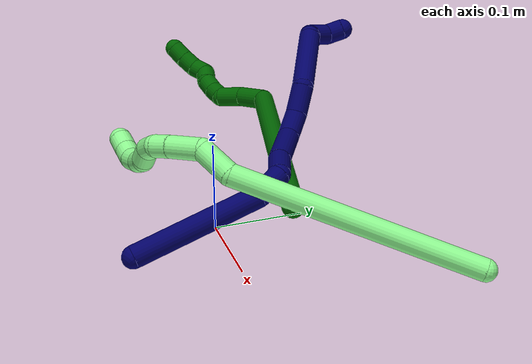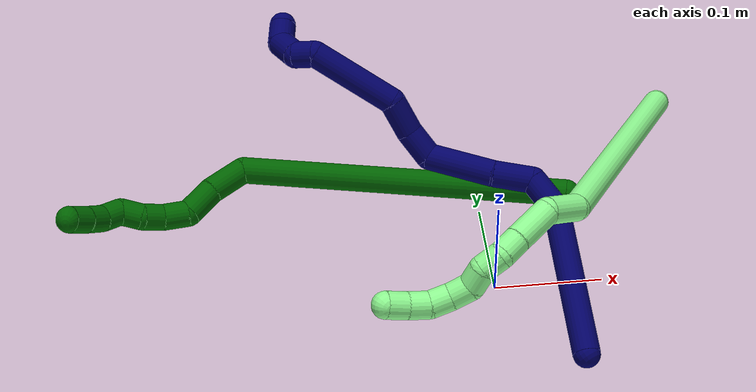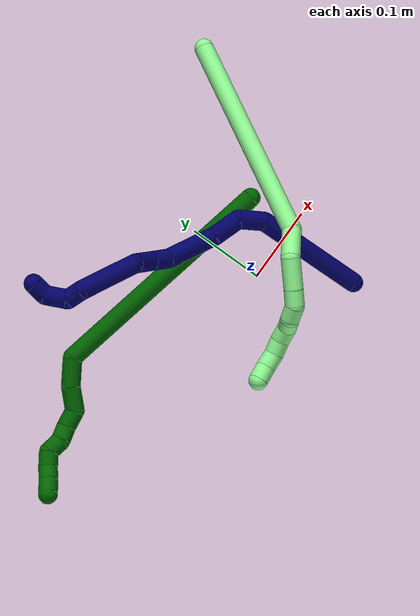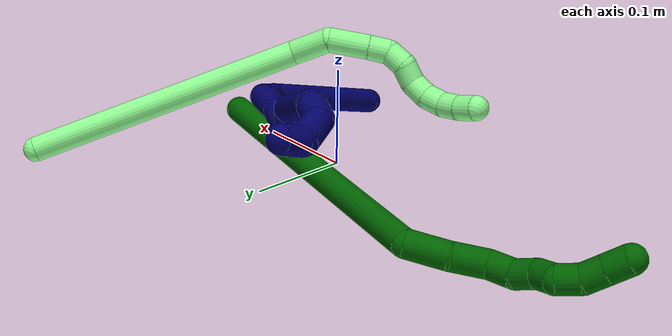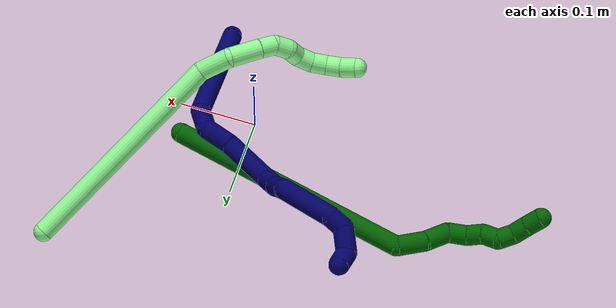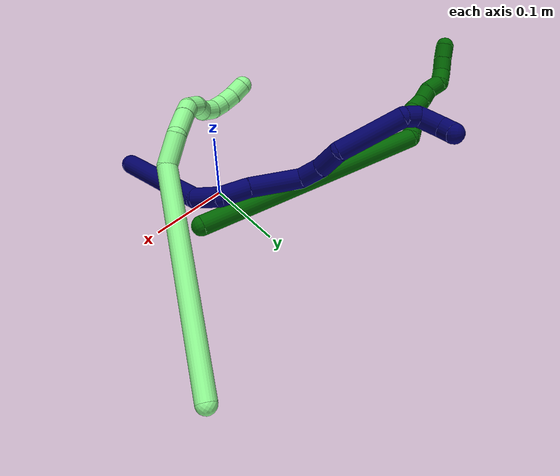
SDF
<sdf version="1.7">
 <world name="default">
  <model name="photoneo_s_sensor">
   <static>1</static>
   <pose>0 0 2 1.57079 1.57079 3.14159</pose>
   <link name="link">
    <inertial><mass>0.1</mass></inertial>
    <sensor name="sensor" type="depth">
     <update_rate>30</update_rate>
     <camera>
      <horizontal_fov>1.22</horizontal_fov>
      <image><width>1920</width><height>1200</height><format>B8G8R8</format></image>
      <clip><near>0.1</near><far>4</far></clip>
      <depth_camera><output>points</output></depth_camera>
     </camera>
     <plugin name="camera_plugin" filename="libgazebo_ros_depth_camera.so">
      <baseline>0.2</baseline>
      <alwaysOn>1</alwaysOn>
      <updateRate>0.0</updateRate>
      <cameraName>camera_ir</cameraName>
      <imageTopicName>/camera/color/image_raw</imageTopicName>
      <cameraInfoTopicName>/camera/color/camera_info</cameraInfoTopicName>
      <depthImageTopicName>/camera/depth/image_raw</depthImageTopicName>
      <depthImageCameraInfoTopicName>/camera/depth/camera_info</depthImageCameraInfoTopicName>
      <pointCloudTopicName>/camera/depth/points</pointCloudTopicName>
      <frameName>fr_optical</frameName>
      <pointCloudCutoff>0.1</pointCloudCutoff>
      <pointCloudCutoffMax>2.0</pointCloudCutoffMax>
      <distortionK1>0</distortionK1>
      <distortionK2>0</distortionK2>
      <distortionK3>0</distortionK3>
      <distortionT1>0</distortionT1>
      <distortionT2>0</distortionT2>
      <CxPrime>0</CxPrime>
      <Cx>0</Cx>
      <Cy>0</Cy>
      <focalLength>0</focalLength>
      <hackBaseline>0</hackBaseline>
     </plugin>
    </sensor>
   </link>
  </model>
  <model name="bin">
   <static>1</static>
   <link name="bottom">
    <collision name="collision-bottom">
     <pose>0 0 -0.01 0 -0 0</pose>
     <geometry><box><size>0.8 0.6 0.02</size></box></geometry>
     <surface>
      <friction><ode><mu>100</mu><mu2>100</mu2></ode></friction>
      <contact><collide_bitmask>65535</collide_bitmask></contact>
     </surface>
    </collision>
   </link>
   <link name="west_wall">
    <collision name="collision-west_wall">
     <pose>-0.41 0 0.1 0 -0 0</pose>
     <geometry><box><size>0.02 0.6 0.2</size></box></geometry>
     <surface>
      <friction><ode><mu>100</mu><mu2>100</mu2></ode></friction>
      <contact><collide_bitmask>65535</collide_bitmask></contact>
     </surface>
    </collision>
   </link>
   <link name="east_wall">
    <collision name="collision-east_wall">
     <pose>0.41 0 0.1 0 -0 0</pose>
     <geometry><box><size>0.02 0.6 0.2</size></box></geometry>
     <surface>
      <friction><ode><mu>100</mu><mu2>100</mu2></ode></friction>
      <contact><collide_bitmask>65535</collide_bitmask></contact>
     </surface>
    </collision>
   </link>
   <link name="south_wall">
    <collision name="collision-south_wall">
     <pose>0 -0.31 0.1 0 -0 0</pose>
     <geometry><box><size>0.8 0.02 0.2</size></box></geometry>
     <surface>
      <friction><ode><mu>100</mu><mu2>100</mu2></ode></friction>
      <contact><collide_bitmask>65535</collide_bitmask></contact>
     </surface>
    </collision>
   </link>
   <link name="north_wall">
    <collision name="collision-north_wall">
     <pose>0 0.31 0.1 0 -0 0</pose>
     <geometry><box><size>0.8 0.02 0.2</size></box></geometry>
     <surface>
      <friction><ode><mu>100</mu><mu2>100</mu2></ode></friction>
      <contact><collide_bitmask>65535</collide_bitmask></contact>
     </surface>
    </collision>
   </link>
  </model>
  <model name="6">
   <static>0</static>
   <link name="6">
    <collision name="collision-cylinder-e_1_1_4">
     <pose>-0.106841 0.109426 0.003591 -1.53799 -0.773176 0.750529</pose>
     <geometry><cylinder><radius>0.0125</radius><length>0.305953</length></cylinder></geometry>
     <surface>
      <friction><ode><mu>1.16</mu><mu2>1.16</mu2><slip1>0</slip1><slip2>0</slip2></ode></friction>
      <contact><ode><kp>1e+06</kp><kd>1</kd><max_vel>0</max_vel><min_depth>0.001</min_depth></ode></contact>
     </surface>
    </collision>
    <visual name="visual-cylinder-e_1_1_4">
     <pose>-0.106841 0.109426 0.003591 -1.53799 -0.773176 0.750529</pose>
     <geometry><cylinder><radius>0.0125</radius><length>0.305953</length></cylinder></geometry>
     <material><ambient>0 0.392157 0.003922 1</ambient></material>
    </visual>
    <collision name="collision-cylinder-e_2_4_5">
     <pose>-0.228338 0.222636 0.017983 -0.336965 -0.907863 0.165604</pose>
     <geometry><cylinder><radius>0.0125</radius><length>0.037192</length></cylinder></geometry>
     <surface>
      <friction><ode><mu>1.16</mu><mu2>1.16</mu2><slip1>0</slip1><slip2>0</slip2></ode></friction>
      <contact><ode><kp>1e+06</kp><kd>1</kd><max_vel>0</max_vel><min_depth>0.001</min_depth></ode></contact>
     </surface>
    </collision>
    <visual name="visual-cylinder-e_2_4_5">
     <pose>-0.228338 0.222636 0.017983 -0.336965 -0.907863 0.165604</pose>
     <geometry><cylinder><radius>0.0125</radius><length>0.037192</length></cylinder></geometry>
     <material><ambient>0 0.392157 0.003922 1</ambient></material>
    </visual>
    <collision name="collision-cylinder-e_3_5_6">
     <pose>-0.254658 0.226493 0.03968 -0.006779 -0.819318 0.002944</pose>
     <geometry><cylinder><radius>0.0125</radius><length>0.031921</length></cylinder></geometry>
     <surface>
      <friction><ode><mu>1.16</mu><mu2>1.16</mu2><slip1>0</slip1><slip2>0</slip2></ode></friction>
      <contact><ode><kp>1e+06</kp><kd>1</kd><max_vel>0</max_vel><min_depth>0.001</min_depth></ode></contact>
     </surface>
    </collision>
    <visual name="visual-cylinder-e_3_5_6">
     <pose>-0.254658 0.226493 0.03968 -0.006779 -0.819318 0.002944</pose>
     <geometry><cylinder><radius>0.0125</radius><length>0.031921</length></cylinder></geometry>
     <material><ambient>0 0.392157 0.003922 1</ambient></material>
    </visual>
    <collision name="collision-cylinder-e_4_6_7">
     <pose>-0.275326 0.233575 0.054737 -1.03499 -0.835238 0.494817</pose>
     <geometry><cylinder><radius>0.0125</radius><length>0.024294</length></cylinder></geometry>
     <surface>
      <friction><ode><mu>1.16</mu><mu2>1.16</mu2><slip1>0</slip1><slip2>0</slip2></ode></friction>
      <contact><ode><kp>1e+06</kp><kd>1</kd><max_vel>0</max_vel><min_depth>0.001</min_depth></ode></contact>
     </surface>
    </collision>
    <visual name="visual-cylinder-e_4_6_7">
     <pose>-0.275326 0.233575 0.054737 -1.03499 -0.835238 0.494817</pose>
     <geometry><cylinder><radius>0.0125</radius><length>0.024294</length></cylinder></geometry>
     <material><ambient>0 0.392157 0.003922 1</ambient></material>
    </visual>
    <collision name="collision-cylinder-e_5_7_8">
     <pose>-0.289187 0.247542 0.064517 -0.891497 -0.497337 0.241481</pose>
     <geometry><cylinder><radius>0.0125</radius><length>0.020352</length></cylinder></geometry>
     <surface>
      <friction><ode><mu>1.16</mu><mu2>1.16</mu2><slip1>0</slip1><slip2>0</slip2></ode></friction>
      <contact><ode><kp>1e+06</kp><kd>1</kd><max_vel>0</max_vel><min_depth>0.001</min_depth></ode></contact>
     </surface>
    </collision>
    <visual name="visual-cylinder-e_5_7_8">
     <pose>-0.289187 0.247542 0.064517 -0.891497 -0.497337 0.241481</pose>
     <geometry><cylinder><radius>0.0125</radius><length>0.020352</length></cylinder></geometry>
     <material><ambient>0 0.392157 0.003922 1</ambient></material>
    </visual>
    <collision name="collision-cylinder-e_6_8_9">
     <pose>-0.299225 0.263079 0.071627 -1.39871 -0.536882 0.454784</pose>
     <geometry><cylinder><radius>0.0125</radius><length>0.020266</length></cylinder></geometry>
     <surface>
      <friction><ode><mu>1.16</mu><mu2>1.16</mu2><slip1>0</slip1><slip2>0</slip2></ode></friction>
      <contact><ode><kp>1e+06</kp><kd>1</kd><max_vel>0</max_vel><min_depth>0.001</min_depth></ode></contact>
     </surface>
    </collision>
    <visual name="visual-cylinder-e_6_8_9">
     <pose>-0.299225 0.263079 0.071627 -1.39871 -0.536882 0.454784</pose>
     <geometry><cylinder><radius>0.0125</radius><length>0.020266</length></cylinder></geometry>
     <material><ambient>0 0.392157 0.003922 1</ambient></material>
    </visual>
    <collision name="collision-cylinder-e_7_9_10">
     <pose>-0.310066 0.275417 0.080463 -0.473039 -0.601093 0.149131</pose>
     <geometry><cylinder><radius>0.0125</radius><length>0.02001</length></cylinder></geometry>
     <surface>
      <friction><ode><mu>1.16</mu><mu2>1.16</mu2><slip1>0</slip1><slip2>0</slip2></ode></friction>
      <contact><ode><kp>1e+06</kp><kd>1</kd><max_vel>0</max_vel><min_depth>0.001</min_depth></ode></contact>
     </surface>
    </collision>
    <visual name="visual-cylinder-e_7_9_10">
     <pose>-0.310066 0.275417 0.080463 -0.473039 -0.601093 0.149131</pose>
     <geometry><cylinder><radius>0.0125</radius><length>0.02001</length></cylinder></geometry>
     <material><ambient>0 0.392157 0.003922 1</ambient></material>
    </visual>
    <collision name="collision-cylinder-e_8_10_11">
     <pose>-0.317953 0.28409 0.09623 -0.528241 -0.224772 0.061025</pose>
     <geometry><cylinder><radius>0.0125</radius><length>0.020004</length></cylinder></geometry>
     <surface>
      <friction><ode><mu>1.16</mu><mu2>1.16</mu2><slip1>0</slip1><slip2>0</slip2></ode></friction>
      <contact><ode><kp>1e+06</kp><kd>1</kd><max_vel>0</max_vel><min_depth>0.001</min_depth></ode></contact>
     </surface>
    </collision>
    <visual name="visual-cylinder-e_8_10_11">
     <pose>-0.317953 0.28409 0.09623 -0.528241 -0.224772 0.061025</pose>
     <geometry><cylinder><radius>0.0125</radius><length>0.020004</length></cylinder></geometry>
     <material><ambient>0 0.392157 0.003922 1</ambient></material>
    </visual>
    <collision name="collision-cylinder-e_9_11_2">
     <pose>-0.322263 0.294509 0.112741 -0.597418 -0.209534 0.064735</pose>
     <geometry><cylinder><radius>0.0125</radius><length>0.020008</length></cylinder></geometry>
     <surface>
      <friction><ode><mu>1.16</mu><mu2>1.16</mu2><slip1>0</slip1><slip2>0</slip2></ode></friction>
      <contact><ode><kp>1e+06</kp><kd>1</kd><max_vel>0</max_vel><min_depth>0.001</min_depth></ode></contact>
     </surface>
    </collision>
    <visual name="visual-cylinder-e_9_11_2">
     <pose>-0.322263 0.294509 0.112741 -0.597418 -0.209534 0.064735</pose>
     <geometry><cylinder><radius>0.0125</radius><length>0.020008</length></cylinder></geometry>
     <material><ambient>0 0.392157 0.003922 1</ambient></material>
    </visual>
    <collision name="collision-sphere-2">
     <pose>-0.324344 0.300013 0.120832 0 -0 0</pose>
     <geometry><sphere><radius>0.0125</radius></sphere></geometry>
     <surface>
      <friction><ode><mu>1.16</mu><mu2>1.16</mu2><slip1>0</slip1><slip2>0</slip2></ode></friction>
      <contact><ode><kp>1e+06</kp><kd>1</kd><max_vel>0</max_vel><min_depth>0.001</min_depth></ode></contact>
     </surface>
    </collision>
    <visual name="visual-sphere-2">
     <pose>-0.324344 0.300013 0.120832 0 -0 0</pose>
     <geometry><sphere><radius>0.0125</radius></sphere></geometry>
     <material><ambient>0 0.392157 0.003922 1</ambient></material>
    </visual>
    <collision name="collision-sphere-11">
     <pose>-0.320182 0.289005 0.104651 0 -0 0</pose>
     <geometry><sphere><radius>0.0125</radius></sphere></geometry>
     <surface>
      <friction><ode><mu>1.16</mu><mu2>1.16</mu2><slip1>0</slip1><slip2>0</slip2></ode></friction>
      <contact><ode><kp>1e+06</kp><kd>1</kd><max_vel>0</max_vel><min_depth>0.001</min_depth></ode></contact>
     </surface>
    </collision>
    <visual name="visual-sphere-11">
     <pose>-0.320182 0.289005 0.104651 0 -0 0</pose>
     <geometry><sphere><radius>0.0125</radius></sphere></geometry>
     <material><ambient>0 0.392157 0.003922 1</ambient></material>
    </visual>
    <collision name="collision-sphere-10">
     <pose>-0.315724 0.279176 0.087808 0 -0 0</pose>
     <geometry><sphere><radius>0.0125</radius></sphere></geometry>
     <surface>
      <friction><ode><mu>1.16</mu><mu2>1.16</mu2><slip1>0</slip1><slip2>0</slip2></ode></friction>
      <contact><ode><kp>1e+06</kp><kd>1</kd><max_vel>0</max_vel><min_depth>0.001</min_depth></ode></contact>
     </surface>
    </collision>
    <visual name="visual-sphere-10">
     <pose>-0.315724 0.279176 0.087808 0 -0 0</pose>
     <geometry><sphere><radius>0.0125</radius></sphere></geometry>
     <material><ambient>0 0.392157 0.003922 1</ambient></material>
    </visual>
    <collision name="collision-sphere-9">
     <pose>-0.304407 0.271658 0.073118 0 -0 0</pose>
     <geometry><sphere><radius>0.0125</radius></sphere></geometry>
     <surface>
      <friction><ode><mu>1.16</mu><mu2>1.16</mu2><slip1>0</slip1><slip2>0</slip2></ode></friction>
      <contact><ode><kp>1e+06</kp><kd>1</kd><max_vel>0</max_vel><min_depth>0.001</min_depth></ode></contact>
     </surface>
    </collision>
    <visual name="visual-sphere-9">
     <pose>-0.304407 0.271658 0.073118 0 -0 0</pose>
     <geometry><sphere><radius>0.0125</radius></sphere></geometry>
     <material><ambient>0 0.392157 0.003922 1</ambient></material>
    </visual>
    <collision name="collision-sphere-4">
     <pose>-0.213681 0.218852 0.007182 0 -0 0</pose>
     <geometry><sphere><radius>0.0125</radius></sphere></geometry>
     <surface>
      <friction><ode><mu>1.16</mu><mu2>1.16</mu2><slip1>0</slip1><slip2>0</slip2></ode></friction>
      <contact><ode><kp>1e+06</kp><kd>1</kd><max_vel>0</max_vel><min_depth>0.001</min_depth></ode></contact>
     </surface>
    </collision>
    <visual name="visual-sphere-4">
     <pose>-0.213681 0.218852 0.007182 0 -0 0</pose>
     <geometry><sphere><radius>0.0125</radius></sphere></geometry>
     <material><ambient>0 0.392157 0.003922 1</ambient></material>
    </visual>
    <collision name="collision-sphere-1">
     <geometry><sphere><radius>0.0125</radius></sphere></geometry>
     <surface>
      <friction><ode><mu>1.16</mu><mu2>1.16</mu2><slip1>0</slip1><slip2>0</slip2></ode></friction>
      <contact><ode><kp>1e+06</kp><kd>1</kd><max_vel>0</max_vel><min_depth>0.001</min_depth></ode></contact>
     </surface>
    </collision>
    <visual name="visual-sphere-1">
     <geometry><sphere><radius>0.0125</radius></sphere></geometry>
     <material><ambient>0 0.392157 0.003922 1</ambient></material>
    </visual>
    <collision name="collision-sphere-8">
     <pose>-0.294042 0.2545 0.070136 0 -0 0</pose>
     <geometry><sphere><radius>0.0125</radius></sphere></geometry>
     <surface>
      <friction><ode><mu>1.16</mu><mu2>1.16</mu2><slip1>0</slip1><slip2>0</slip2></ode></friction>
      <contact><ode><kp>1e+06</kp><kd>1</kd><max_vel>0</max_vel><min_depth>0.001</min_depth></ode></contact>
     </surface>
    </collision>
    <visual name="visual-sphere-8">
     <pose>-0.294042 0.2545 0.070136 0 -0 0</pose>
     <geometry><sphere><radius>0.0125</radius></sphere></geometry>
     <material><ambient>0 0.392157 0.003922 1</ambient></material>
    </visual>
    <collision name="collision-sphere-5">
     <pose>-0.242996 0.226419 0.028784 0 -0 0</pose>
     <geometry><sphere><radius>0.0125</radius></sphere></geometry>
     <surface>
      <friction><ode><mu>1.16</mu><mu2>1.16</mu2><slip1>0</slip1><slip2>0</slip2></ode></friction>
      <contact><ode><kp>1e+06</kp><kd>1</kd><max_vel>0</max_vel><min_depth>0.001</min_depth></ode></contact>
     </surface>
    </collision>
    <visual name="visual-sphere-5">
     <pose>-0.242996 0.226419 0.028784 0 -0 0</pose>
     <geometry><sphere><radius>0.0125</radius></sphere></geometry>
     <material><ambient>0 0.392157 0.003922 1</ambient></material>
    </visual>
    <collision name="collision-sphere-6">
     <pose>-0.266319 0.226567 0.050576 0 -0 0</pose>
     <geometry><sphere><radius>0.0125</radius></sphere></geometry>
     <surface>
      <friction><ode><mu>1.16</mu><mu2>1.16</mu2><slip1>0</slip1><slip2>0</slip2></ode></friction>
      <contact><ode><kp>1e+06</kp><kd>1</kd><max_vel>0</max_vel><min_depth>0.001</min_depth></ode></contact>
     </surface>
    </collision>
    <visual name="visual-sphere-6">
     <pose>-0.266319 0.226567 0.050576 0 -0 0</pose>
     <geometry><sphere><radius>0.0125</radius></sphere></geometry>
     <material><ambient>0 0.392157 0.003922 1</ambient></material>
    </visual>
    <collision name="collision-sphere-7">
     <pose>-0.284332 0.240584 0.058899 0 -0 0</pose>
     <geometry><sphere><radius>0.0125</radius></sphere></geometry>
     <surface>
      <friction><ode><mu>1.16</mu><mu2>1.16</mu2><slip1>0</slip1><slip2>0</slip2></ode></friction>
      <contact><ode><kp>1e+06</kp><kd>1</kd><max_vel>0</max_vel><min_depth>0.001</min_depth></ode></contact>
     </surface>
    </collision>
    <visual name="visual-sphere-7">
     <pose>-0.284332 0.240584 0.058899 0 -0 0</pose>
     <geometry><sphere><radius>0.0125</radius></sphere></geometry>
     <material><ambient>0 0.392157 0.003922 1</ambient></material>
    </visual>
    <inertial>
     <pose>-0.173921 0.16424 0.025839 0 -0 0</pose>
     <mass>0.5</mass>
     <inertia>
      <ixx>0.002417</ixx>
      <ixy>0</ixy>
      <ixz>0</ixz>
      <iyy>0.002413</iyy>
      <iyz>0</iyz>
      <izz>-2.6e-05</izz>
     </inertia>
    </inertial>
   </link>
   <pose>0.074957 0.064786 0.052329 0.960294 -0.71976 0.185027</pose>
  </model>
  <model name="7">
   <static>0</static>
   <link name="7">
    <collision name="collision-cylinder-e_1_1_4">
     <pose>0.029198 -0.007525 0.066185 0.113207 0.413109 0.023746</pose>
     <geometry><cylinder><radius>0.0125</radius><length>0.145459</length></cylinder></geometry>
     <surface>
      <friction><ode><mu>1.16</mu><mu2>1.16</mu2><slip1>0</slip1><slip2>0</slip2></ode></friction>
      <contact><ode><kp>1e+06</kp><kd>1</kd><max_vel>0</max_vel><min_depth>0.001</min_depth></ode></contact>
     </surface>
    </collision>
    <visual name="visual-cylinder-e_1_1_4">
     <pose>0.029198 -0.007525 0.066185 0.113207 0.413109 0.023746</pose>
     <geometry><cylinder><radius>0.0125</radius><length>0.145459</length></cylinder></geometry>
     <material><ambient>0.003922 0 0.403922 1</ambient></material>
    </visual>
    <collision name="collision-cylinder-e_2_4_5">
     <pose>0.05746 -0.014063 0.149914 -0.056163 -0.0532 0.001495</pose>
     <geometry><cylinder><radius>0.0125</radius><length>0.035193</length></cylinder></geometry>
     <surface>
      <friction><ode><mu>1.16</mu><mu2>1.16</mu2><slip1>0</slip1><slip2>0</slip2></ode></friction>
      <contact><ode><kp>1e+06</kp><kd>1</kd><max_vel>0</max_vel><min_depth>0.001</min_depth></ode></contact>
     </surface>
    </collision>
    <visual name="visual-cylinder-e_2_4_5">
     <pose>0.05746 -0.014063 0.149914 -0.056163 -0.0532 0.001495</pose>
     <geometry><cylinder><radius>0.0125</radius><length>0.035193</length></cylinder></geometry>
     <material><ambient>0.003922 0 0.403922 1</ambient></material>
    </visual>
    <collision name="collision-cylinder-e_3_5_6">
     <pose>0.046508 -0.004208 0.179909 -0.618935 -0.580061 0.190274</pose>
     <geometry><cylinder><radius>0.0125</radius><length>0.036552</length></cylinder></geometry>
     <surface>
      <friction><ode><mu>1.16</mu><mu2>1.16</mu2><slip1>0</slip1><slip2>0</slip2></ode></friction>
      <contact><ode><kp>1e+06</kp><kd>1</kd><max_vel>0</max_vel><min_depth>0.001</min_depth></ode></contact>
     </surface>
    </collision>
    <visual name="visual-cylinder-e_3_5_6">
     <pose>0.046508 -0.004208 0.179909 -0.618935 -0.580061 0.190274</pose>
     <geometry><cylinder><radius>0.0125</radius><length>0.036552</length></cylinder></geometry>
     <material><ambient>0.003922 0 0.403922 1</ambient></material>
    </visual>
    <collision name="collision-cylinder-e_4_6_7">
     <pose>0.023129 0.020692 0.217236 -0.57244 -0.424088 0.126545</pose>
     <geometry><cylinder><radius>0.0125</radius><length>0.064942</length></cylinder></geometry>
     <surface>
      <friction><ode><mu>1.16</mu><mu2>1.16</mu2><slip1>0</slip1><slip2>0</slip2></ode></friction>
      <contact><ode><kp>1e+06</kp><kd>1</kd><max_vel>0</max_vel><min_depth>0.001</min_depth></ode></contact>
     </surface>
    </collision>
    <visual name="visual-cylinder-e_4_6_7">
     <pose>0.023129 0.020692 0.217236 -0.57244 -0.424088 0.126545</pose>
     <geometry><cylinder><radius>0.0125</radius><length>0.064942</length></cylinder></geometry>
     <material><ambient>0.003922 0 0.403922 1</ambient></material>
    </visual>
    <collision name="collision-cylinder-e_5_7_8">
     <pose>0.004651 0.033621 0.255682 0.224719 -0.352304 -0.040163</pose>
     <geometry><cylinder><radius>0.0125</radius><length>0.029659</length></cylinder></geometry>
     <surface>
      <friction><ode><mu>1.16</mu><mu2>1.16</mu2><slip1>0</slip1><slip2>0</slip2></ode></friction>
      <contact><ode><kp>1e+06</kp><kd>1</kd><max_vel>0</max_vel><min_depth>0.001</min_depth></ode></contact>
     </surface>
    </collision>
    <visual name="visual-cylinder-e_5_7_8">
     <pose>0.004651 0.033621 0.255682 0.224719 -0.352304 -0.040163</pose>
     <geometry><cylinder><radius>0.0125</radius><length>0.029659</length></cylinder></geometry>
     <material><ambient>0.003922 0 0.403922 1</ambient></material>
    </visual>
    <collision name="collision-cylinder-e_6_8_9">
     <pose>-0.006771 0.023088 0.283013 0.495098 -0.383179 -0.097966</pose>
     <geometry><cylinder><radius>0.0125</radius><length>0.033728</length></cylinder></geometry>
     <surface>
      <friction><ode><mu>1.16</mu><mu2>1.16</mu2><slip1>0</slip1><slip2>0</slip2></ode></friction>
      <contact><ode><kp>1e+06</kp><kd>1</kd><max_vel>0</max_vel><min_depth>0.001</min_depth></ode></contact>
     </surface>
    </collision>
    <visual name="visual-cylinder-e_6_8_9">
     <pose>-0.006771 0.023088 0.283013 0.495098 -0.383179 -0.097966</pose>
     <geometry><cylinder><radius>0.0125</radius><length>0.033728</length></cylinder></geometry>
     <material><ambient>0.003922 0 0.403922 1</ambient></material>
    </visual>
    <collision name="collision-cylinder-e_7_9_10">
     <pose>-0.035472 0.01902 0.33197 -0.09526 -0.56468 0.027653</pose>
     <geometry><cylinder><radius>0.0125</radius><length>0.083701</length></cylinder></geometry>
     <surface>
      <friction><ode><mu>1.16</mu><mu2>1.16</mu2><slip1>0</slip1><slip2>0</slip2></ode></friction>
      <contact><ode><kp>1e+06</kp><kd>1</kd><max_vel>0</max_vel><min_depth>0.001</min_depth></ode></contact>
     </surface>
    </collision>
    <visual name="visual-cylinder-e_7_9_10">
     <pose>-0.035472 0.01902 0.33197 -0.09526 -0.56468 0.027653</pose>
     <geometry><cylinder><radius>0.0125</radius><length>0.083701</length></cylinder></geometry>
     <material><ambient>0.003922 0 0.403922 1</ambient></material>
    </visual>
    <collision name="collision-cylinder-e_8_10_11">
     <pose>-0.062062 0.029435 0.373015 -0.878198 -0.429133 0.203996</pose>
     <geometry><cylinder><radius>0.0125</radius><length>0.020156</length></cylinder></geometry>
     <surface>
      <friction><ode><mu>1.16</mu><mu2>1.16</mu2><slip1>0</slip1><slip2>0</slip2></ode></friction>
      <contact><ode><kp>1e+06</kp><kd>1</kd><max_vel>0</max_vel><min_depth>0.001</min_depth></ode></contact>
     </surface>
    </collision>
    <visual name="visual-cylinder-e_8_10_11">
     <pose>-0.062062 0.029435 0.373015 -0.878198 -0.429133 0.203996</pose>
     <geometry><cylinder><radius>0.0125</radius><length>0.020156</length></cylinder></geometry>
     <material><ambient>0.003922 0 0.403922 1</ambient></material>
    </visual>
    <collision name="collision-cylinder-e_9_11_12">
     <pose>-0.06246 0.044183 0.39119 -0.558222 0.255475 -0.073585</pose>
     <geometry><cylinder><radius>0.0125</radius><length>0.030033</length></cylinder></geometry>
     <surface>
      <friction><ode><mu>1.16</mu><mu2>1.16</mu2><slip1>0</slip1><slip2>0</slip2></ode></friction>
      <contact><ode><kp>1e+06</kp><kd>1</kd><max_vel>0</max_vel><min_depth>0.001</min_depth></ode></contact>
     </surface>
    </collision>
    <visual name="visual-cylinder-e_9_11_12">
     <pose>-0.06246 0.044183 0.39119 -0.558222 0.255475 -0.073585</pose>
     <geometry><cylinder><radius>0.0125</radius><length>0.030033</length></cylinder></geometry>
     <material><ambient>0.003922 0 0.403922 1</ambient></material>
    </visual>
    <collision name="collision-cylinder-e_10_12_2">
     <pose>-0.053011 0.050034 0.411908 0.216378 0.581948 0.065031</pose>
     <geometry><cylinder><radius>0.0125</radius><length>0.020576</length></cylinder></geometry>
     <surface>
      <friction><ode><mu>1.16</mu><mu2>1.16</mu2><slip1>0</slip1><slip2>0</slip2></ode></friction>
      <contact><ode><kp>1e+06</kp><kd>1</kd><max_vel>0</max_vel><min_depth>0.001</min_depth></ode></contact>
     </surface>
    </collision>
    <visual name="visual-cylinder-e_10_12_2">
     <pose>-0.053011 0.050034 0.411908 0.216378 0.581948 0.065031</pose>
     <geometry><cylinder><radius>0.0125</radius><length>0.020576</length></cylinder></geometry>
     <material><ambient>0.003922 0 0.403922 1</ambient></material>
    </visual>
    <collision name="collision-sphere-2">
     <pose>-0.047356 0.048189 0.420302 0 -0 0</pose>
     <geometry><sphere><radius>0.0125</radius></sphere></geometry>
     <surface>
      <friction><ode><mu>1.16</mu><mu2>1.16</mu2><slip1>0</slip1><slip2>0</slip2></ode></friction>
      <contact><ode><kp>1e+06</kp><kd>1</kd><max_vel>0</max_vel><min_depth>0.001</min_depth></ode></contact>
     </surface>
    </collision>
    <visual name="visual-sphere-2">
     <pose>-0.047356 0.048189 0.420302 0 -0 0</pose>
     <geometry><sphere><radius>0.0125</radius></sphere></geometry>
     <material><ambient>0.003922 0 0.403922 1</ambient></material>
    </visual>
    <collision name="collision-sphere-12">
     <pose>-0.058665 0.051879 0.403514 0 -0 0</pose>
     <geometry><sphere><radius>0.0125</radius></sphere></geometry>
     <surface>
      <friction><ode><mu>1.16</mu><mu2>1.16</mu2><slip1>0</slip1><slip2>0</slip2></ode></friction>
      <contact><ode><kp>1e+06</kp><kd>1</kd><max_vel>0</max_vel><min_depth>0.001</min_depth></ode></contact>
     </surface>
    </collision>
    <visual name="visual-sphere-12">
     <pose>-0.058665 0.051879 0.403514 0 -0 0</pose>
     <geometry><sphere><radius>0.0125</radius></sphere></geometry>
     <material><ambient>0.003922 0 0.403922 1</ambient></material>
    </visual>
    <collision name="collision-sphere-11">
     <pose>-0.066255 0.036487 0.378867 0 -0 0</pose>
     <geometry><sphere><radius>0.0125</radius></sphere></geometry>
     <surface>
      <friction><ode><mu>1.16</mu><mu2>1.16</mu2><slip1>0</slip1><slip2>0</slip2></ode></friction>
      <contact><ode><kp>1e+06</kp><kd>1</kd><max_vel>0</max_vel><min_depth>0.001</min_depth></ode></contact>
     </surface>
    </collision>
    <visual name="visual-sphere-11">
     <pose>-0.066255 0.036487 0.378867 0 -0 0</pose>
     <geometry><sphere><radius>0.0125</radius></sphere></geometry>
     <material><ambient>0.003922 0 0.403922 1</ambient></material>
    </visual>
    <collision name="collision-sphere-10">
     <pose>-0.057869 0.022382 0.367163 0 -0 0</pose>
     <geometry><sphere><radius>0.0125</radius></sphere></geometry>
     <surface>
      <friction><ode><mu>1.16</mu><mu2>1.16</mu2><slip1>0</slip1><slip2>0</slip2></ode></friction>
      <contact><ode><kp>1e+06</kp><kd>1</kd><max_vel>0</max_vel><min_depth>0.001</min_depth></ode></contact>
     </surface>
    </collision>
    <visual name="visual-sphere-10">
     <pose>-0.057869 0.022382 0.367163 0 -0 0</pose>
     <geometry><sphere><radius>0.0125</radius></sphere></geometry>
     <material><ambient>0.003922 0 0.403922 1</ambient></material>
    </visual>
    <collision name="collision-sphere-9">
     <pose>-0.013076 0.015657 0.296776 0 -0 0</pose>
     <geometry><sphere><radius>0.0125</radius></sphere></geometry>
     <surface>
      <friction><ode><mu>1.16</mu><mu2>1.16</mu2><slip1>0</slip1><slip2>0</slip2></ode></friction>
      <contact><ode><kp>1e+06</kp><kd>1</kd><max_vel>0</max_vel><min_depth>0.001</min_depth></ode></contact>
     </surface>
    </collision>
    <visual name="visual-sphere-9">
     <pose>-0.013076 0.015657 0.296776 0 -0 0</pose>
     <geometry><sphere><radius>0.0125</radius></sphere></geometry>
     <material><ambient>0.003922 0 0.403922 1</ambient></material>
    </visual>
    <collision name="collision-sphere-4">
     <pose>0.058396 -0.015049 0.13237 0 -0 0</pose>
     <geometry><sphere><radius>0.0125</radius></sphere></geometry>
     <surface>
      <friction><ode><mu>1.16</mu><mu2>1.16</mu2><slip1>0</slip1><slip2>0</slip2></ode></friction>
      <contact><ode><kp>1e+06</kp><kd>1</kd><max_vel>0</max_vel><min_depth>0.001</min_depth></ode></contact>
     </surface>
    </collision>
    <visual name="visual-sphere-4">
     <pose>0.058396 -0.015049 0.13237 0 -0 0</pose>
     <geometry><sphere><radius>0.0125</radius></sphere></geometry>
     <material><ambient>0.003922 0 0.403922 1</ambient></material>
    </visual>
    <collision name="collision-sphere-1">
     <geometry><sphere><radius>0.0125</radius></sphere></geometry>
     <surface>
      <friction><ode><mu>1.16</mu><mu2>1.16</mu2><slip1>0</slip1><slip2>0</slip2></ode></friction>
      <contact><ode><kp>1e+06</kp><kd>1</kd><max_vel>0</max_vel><min_depth>0.001</min_depth></ode></contact>
     </surface>
    </collision>
    <visual name="visual-sphere-1">
     <geometry><sphere><radius>0.0125</radius></sphere></geometry>
     <material><ambient>0.003922 0 0.403922 1</ambient></material>
    </visual>
    <collision name="collision-sphere-8">
     <pose>-0.000466 0.03052 0.26925 0 -0 0</pose>
     <geometry><sphere><radius>0.0125</radius></sphere></geometry>
     <surface>
      <friction><ode><mu>1.16</mu><mu2>1.16</mu2><slip1>0</slip1><slip2>0</slip2></ode></friction>
      <contact><ode><kp>1e+06</kp><kd>1</kd><max_vel>0</max_vel><min_depth>0.001</min_depth></ode></contact>
     </surface>
    </collision>
    <visual name="visual-sphere-8">
     <pose>-0.000466 0.03052 0.26925 0 -0 0</pose>
     <geometry><sphere><radius>0.0125</radius></sphere></geometry>
     <material><ambient>0.003922 0 0.403922 1</ambient></material>
    </visual>
    <collision name="collision-sphere-5">
     <pose>0.056524 -0.013077 0.167458 0 -0 0</pose>
     <geometry><sphere><radius>0.0125</radius></sphere></geometry>
     <surface>
      <friction><ode><mu>1.16</mu><mu2>1.16</mu2><slip1>0</slip1><slip2>0</slip2></ode></friction>
      <contact><ode><kp>1e+06</kp><kd>1</kd><max_vel>0</max_vel><min_depth>0.001</min_depth></ode></contact>
     </surface>
    </collision>
    <visual name="visual-sphere-5">
     <pose>0.056524 -0.013077 0.167458 0 -0 0</pose>
     <geometry><sphere><radius>0.0125</radius></sphere></geometry>
     <material><ambient>0.003922 0 0.403922 1</ambient></material>
    </visual>
    <collision name="collision-sphere-6">
     <pose>0.036491 0.004661 0.19236 0 -0 0</pose>
     <geometry><sphere><radius>0.0125</radius></sphere></geometry>
     <surface>
      <friction><ode><mu>1.16</mu><mu2>1.16</mu2><slip1>0</slip1><slip2>0</slip2></ode></friction>
      <contact><ode><kp>1e+06</kp><kd>1</kd><max_vel>0</max_vel><min_depth>0.001</min_depth></ode></contact>
     </surface>
    </collision>
    <visual name="visual-sphere-6">
     <pose>0.036491 0.004661 0.19236 0 -0 0</pose>
     <geometry><sphere><radius>0.0125</radius></sphere></geometry>
     <material><ambient>0.003922 0 0.403922 1</ambient></material>
    </visual>
    <collision name="collision-sphere-7">
     <pose>0.009768 0.036723 0.242113 0 -0 0</pose>
     <geometry><sphere><radius>0.0125</radius></sphere></geometry>
     <surface>
      <friction><ode><mu>1.16</mu><mu2>1.16</mu2><slip1>0</slip1><slip2>0</slip2></ode></friction>
      <contact><ode><kp>1e+06</kp><kd>1</kd><max_vel>0</max_vel><min_depth>0.001</min_depth></ode></contact>
     </surface>
    </collision>
    <visual name="visual-sphere-7">
     <pose>0.009768 0.036723 0.242113 0 -0 0</pose>
     <geometry><sphere><radius>0.0125</radius></sphere></geometry>
     <material><ambient>0.003922 0 0.403922 1</ambient></material>
    </visual>
    <inertial>
     <pose>0.004389 0.011836 0.216489 0 -0 0</pose>
     <mass>0.5</mass>
     <inertia>
      <ixx>0.000336</ixx>
      <ixy>0</ixy>
      <ixz>0</ixz>
      <iyy>0.000371</iyy>
      <iyz>0</iyz>
      <izz>-2.1e-05</izz>
     </inertia>
    </inertial>
   </link>
   <pose>0.06526 -0.105593 0.019357 -1.16406 0.326492 0.625617</pose>
  </model>
  <model name="13">
   <static>0</static>
   <link name="13">
    <collision name="collision-cylinder-e_1_1_4">
     <pose>-0.08063 -0.068519 0.089817 0.651692 -0.619886 -0.215589</pose>
     <geometry><cylinder><radius>0.0125</radius><length>0.277583</length></cylinder></geometry>
     <surface>
      <friction><ode><mu>1.16</mu><mu2>1.16</mu2><slip1>0</slip1><slip2>0</slip2></ode></friction>
      <contact><ode><kp>1e+06</kp><kd>1</kd><max_vel>0</max_vel><min_depth>0.001</min_depth></ode></contact>
     </surface>
    </collision>
    <visual name="visual-cylinder-e_1_1_4">
     <pose>-0.08063 -0.068519 0.089817 0.651692 -0.619886 -0.215589</pose>
     <geometry><cylinder><radius>0.0125</radius><length>0.277583</length></cylinder></geometry>
     <material><ambient>0.564706 0.984314 0.572549 1</ambient></material>
    </visual>
    <collision name="collision-cylinder-e_2_4_5">
     <pose>-0.179065 -0.144645 0.185783 0.890986 -1.06842 -0.550631</pose>
     <geometry><cylinder><radius>0.0125</radius><length>0.040631</length></cylinder></geometry>
     <surface>
      <friction><ode><mu>1.16</mu><mu2>1.16</mu2><slip1>0</slip1><slip2>0</slip2></ode></friction>
      <contact><ode><kp>1e+06</kp><kd>1</kd><max_vel>0</max_vel><min_depth>0.001</min_depth></ode></contact>
     </surface>
    </collision>
    <visual name="visual-cylinder-e_2_4_5">
     <pose>-0.179065 -0.144645 0.185783 0.890986 -1.06842 -0.550631</pose>
     <geometry><cylinder><radius>0.0125</radius><length>0.040631</length></cylinder></geometry>
     <material><ambient>0.564706 0.984314 0.572549 1</ambient></material>
    </visual>
    <collision name="collision-cylinder-e_3_5_6">
     <pose>-0.207027 -0.169255 0.196377 1.31507 -0.524033 -0.408387</pose>
     <geometry><cylinder><radius>0.0125</radius><length>0.040595</length></cylinder></geometry>
     <surface>
      <friction><ode><mu>1.16</mu><mu2>1.16</mu2><slip1>0</slip1><slip2>0</slip2></ode></friction>
      <contact><ode><kp>1e+06</kp><kd>1</kd><max_vel>0</max_vel><min_depth>0.001</min_depth></ode></contact>
     </surface>
    </collision>
    <visual name="visual-cylinder-e_3_5_6">
     <pose>-0.207027 -0.169255 0.196377 1.31507 -0.524033 -0.408387</pose>
     <geometry><cylinder><radius>0.0125</radius><length>0.040595</length></cylinder></geometry>
     <material><ambient>0.564706 0.984314 0.572549 1</ambient></material>
    </visual>
    <collision name="collision-cylinder-e_4_6_7">
     <pose>-0.222129 -0.195268 0.202763 1.35868 -0.492515 -0.40054</pose>
     <geometry><cylinder><radius>0.0125</radius><length>0.020921</length></cylinder></geometry>
     <surface>
      <friction><ode><mu>1.16</mu><mu2>1.16</mu2><slip1>0</slip1><slip2>0</slip2></ode></friction>
      <contact><ode><kp>1e+06</kp><kd>1</kd><max_vel>0</max_vel><min_depth>0.001</min_depth></ode></contact>
     </surface>
    </collision>
    <visual name="visual-cylinder-e_4_6_7">
     <pose>-0.222129 -0.195268 0.202763 1.35868 -0.492515 -0.40054</pose>
     <geometry><cylinder><radius>0.0125</radius><length>0.020921</length></cylinder></geometry>
     <material><ambient>0.564706 0.984314 0.572549 1</ambient></material>
    </visual>
    <collision name="collision-cylinder-e_5_7_8">
     <pose>-0.230324 -0.213328 0.2016 1.90115 -0.327369 -0.45449</pose>
     <geometry><cylinder><radius>0.0125</radius><length>0.020207</length></cylinder></geometry>
     <surface>
      <friction><ode><mu>1.16</mu><mu2>1.16</mu2><slip1>0</slip1><slip2>0</slip2></ode></friction>
      <contact><ode><kp>1e+06</kp><kd>1</kd><max_vel>0</max_vel><min_depth>0.001</min_depth></ode></contact>
     </surface>
    </collision>
    <visual name="visual-cylinder-e_5_7_8">
     <pose>-0.230324 -0.213328 0.2016 1.90115 -0.327369 -0.45449</pose>
     <geometry><cylinder><radius>0.0125</radius><length>0.020207</length></cylinder></geometry>
     <material><ambient>0.564706 0.984314 0.572549 1</ambient></material>
    </visual>
    <collision name="collision-cylinder-e_6_8_9">
     <pose>-0.231896 -0.23148 0.194696 1.96641 0.168457 0.252166</pose>
     <geometry><cylinder><radius>0.0125</radius><length>0.020009</length></cylinder></geometry>
     <surface>
      <friction><ode><mu>1.16</mu><mu2>1.16</mu2><slip1>0</slip1><slip2>0</slip2></ode></friction>
      <contact><ode><kp>1e+06</kp><kd>1</kd><max_vel>0</max_vel><min_depth>0.001</min_depth></ode></contact>
     </surface>
    </collision>
    <visual name="visual-cylinder-e_6_8_9">
     <pose>-0.231896 -0.23148 0.194696 1.96641 0.168457 0.252166</pose>
     <geometry><cylinder><radius>0.0125</radius><length>0.020009</length></cylinder></geometry>
     <material><ambient>0.564706 0.984314 0.572549 1</ambient></material>
    </visual>
    <collision name="collision-cylinder-e_7_9_10">
     <pose>-0.23418 -0.248716 0.186576 2.05884 -0.406194 -0.659931</pose>
     <geometry><cylinder><radius>0.0125</radius><length>0.020053</length></cylinder></geometry>
     <surface>
      <friction><ode><mu>1.16</mu><mu2>1.16</mu2><slip1>0</slip1><slip2>0</slip2></ode></friction>
      <contact><ode><kp>1e+06</kp><kd>1</kd><max_vel>0</max_vel><min_depth>0.001</min_depth></ode></contact>
     </surface>
    </collision>
    <visual name="visual-cylinder-e_7_9_10">
     <pose>-0.23418 -0.248716 0.186576 2.05884 -0.406194 -0.659931</pose>
     <geometry><cylinder><radius>0.0125</radius><length>0.020053</length></cylinder></geometry>
     <material><ambient>0.564706 0.984314 0.572549 1</ambient></material>
    </visual>
    <collision name="collision-cylinder-e_8_10_11">
     <pose>-0.24428 -0.264318 0.179695 1.90136 -0.660972 -0.89574</pose>
     <geometry><cylinder><radius>0.0125</radius><length>0.02</length></cylinder></geometry>
     <surface>
      <friction><ode><mu>1.16</mu><mu2>1.16</mu2><slip1>0</slip1><slip2>0</slip2></ode></friction>
      <contact><ode><kp>1e+06</kp><kd>1</kd><max_vel>0</max_vel><min_depth>0.001</min_depth></ode></contact>
     </surface>
    </collision>
    <visual name="visual-cylinder-e_8_10_11">
     <pose>-0.24428 -0.264318 0.179695 1.90136 -0.660972 -0.89574</pose>
     <geometry><cylinder><radius>0.0125</radius><length>0.02</length></cylinder></geometry>
     <material><ambient>0.564706 0.984314 0.572549 1</ambient></material>
    </visual>
    <collision name="collision-cylinder-e_9_11_12">
     <pose>-0.258871 -0.276465 0.17455 2.07502 -1.00682 -1.50141</pose>
     <geometry><cylinder><radius>0.0125</radius><length>0.02</length></cylinder></geometry>
     <surface>
      <friction><ode><mu>1.16</mu><mu2>1.16</mu2><slip1>0</slip1><slip2>0</slip2></ode></friction>
      <contact><ode><kp>1e+06</kp><kd>1</kd><max_vel>0</max_vel><min_depth>0.001</min_depth></ode></contact>
     </surface>
    </collision>
    <visual name="visual-cylinder-e_9_11_12">
     <pose>-0.258871 -0.276465 0.17455 2.07502 -1.00682 -1.50141</pose>
     <geometry><cylinder><radius>0.0125</radius><length>0.02</length></cylinder></geometry>
     <material><ambient>0.564706 0.984314 0.572549 1</ambient></material>
    </visual>
    <collision name="collision-cylinder-e_10_12_2">
     <pose>-0.27643 -0.284999 0.170481 1.93904 -1.14505 -1.50847</pose>
     <geometry><cylinder><radius>0.0125</radius><length>0.02</length></cylinder></geometry>
     <surface>
      <friction><ode><mu>1.16</mu><mu2>1.16</mu2><slip1>0</slip1><slip2>0</slip2></ode></friction>
      <contact><ode><kp>1e+06</kp><kd>1</kd><max_vel>0</max_vel><min_depth>0.001</min_depth></ode></contact>
     </surface>
    </collision>
    <visual name="visual-cylinder-e_10_12_2">
     <pose>-0.27643 -0.284999 0.170481 1.93904 -1.14505 -1.50847</pose>
     <geometry><cylinder><radius>0.0125</radius><length>0.02</length></cylinder></geometry>
     <material><ambient>0.564706 0.984314 0.572549 1</ambient></material>
    </visual>
    <collision name="collision-sphere-2">
     <pose>-0.285537 -0.288852 0.168994 0 -0 0</pose>
     <geometry><sphere><radius>0.0125</radius></sphere></geometry>
     <surface>
      <friction><ode><mu>1.16</mu><mu2>1.16</mu2><slip1>0</slip1><slip2>0</slip2></ode></friction>
      <contact><ode><kp>1e+06</kp><kd>1</kd><max_vel>0</max_vel><min_depth>0.001</min_depth></ode></contact>
     </surface>
    </collision>
    <visual name="visual-sphere-2">
     <pose>-0.285537 -0.288852 0.168994 0 -0 0</pose>
     <geometry><sphere><radius>0.0125</radius></sphere></geometry>
     <material><ambient>0.564706 0.984314 0.572549 1</ambient></material>
    </visual>
    <collision name="collision-sphere-12">
     <pose>-0.267322 -0.281145 0.171968 0 -0 0</pose>
     <geometry><sphere><radius>0.0125</radius></sphere></geometry>
     <surface>
      <friction><ode><mu>1.16</mu><mu2>1.16</mu2><slip1>0</slip1><slip2>0</slip2></ode></friction>
      <contact><ode><kp>1e+06</kp><kd>1</kd><max_vel>0</max_vel><min_depth>0.001</min_depth></ode></contact>
     </surface>
    </collision>
    <visual name="visual-sphere-12">
     <pose>-0.267322 -0.281145 0.171968 0 -0 0</pose>
     <geometry><sphere><radius>0.0125</radius></sphere></geometry>
     <material><ambient>0.564706 0.984314 0.572549 1</ambient></material>
    </visual>
    <collision name="collision-sphere-11">
     <pose>-0.250419 -0.271785 0.177133 0 -0 0</pose>
     <geometry><sphere><radius>0.0125</radius></sphere></geometry>
     <surface>
      <friction><ode><mu>1.16</mu><mu2>1.16</mu2><slip1>0</slip1><slip2>0</slip2></ode></friction>
      <contact><ode><kp>1e+06</kp><kd>1</kd><max_vel>0</max_vel><min_depth>0.001</min_depth></ode></contact>
     </surface>
    </collision>
    <visual name="visual-sphere-11">
     <pose>-0.250419 -0.271785 0.177133 0 -0 0</pose>
     <geometry><sphere><radius>0.0125</radius></sphere></geometry>
     <material><ambient>0.564706 0.984314 0.572549 1</ambient></material>
    </visual>
    <collision name="collision-sphere-10">
     <pose>-0.238141 -0.256851 0.182257 0 -0 0</pose>
     <geometry><sphere><radius>0.0125</radius></sphere></geometry>
     <surface>
      <friction><ode><mu>1.16</mu><mu2>1.16</mu2><slip1>0</slip1><slip2>0</slip2></ode></friction>
      <contact><ode><kp>1e+06</kp><kd>1</kd><max_vel>0</max_vel><min_depth>0.001</min_depth></ode></contact>
     </surface>
    </collision>
    <visual name="visual-sphere-10">
     <pose>-0.238141 -0.256851 0.182257 0 -0 0</pose>
     <geometry><sphere><radius>0.0125</radius></sphere></geometry>
     <material><ambient>0.564706 0.984314 0.572549 1</ambient></material>
    </visual>
    <collision name="collision-sphere-9">
     <pose>-0.230218 -0.240581 0.190895 0 -0 0</pose>
     <geometry><sphere><radius>0.0125</radius></sphere></geometry>
     <surface>
      <friction><ode><mu>1.16</mu><mu2>1.16</mu2><slip1>0</slip1><slip2>0</slip2></ode></friction>
      <contact><ode><kp>1e+06</kp><kd>1</kd><max_vel>0</max_vel><min_depth>0.001</min_depth></ode></contact>
     </surface>
    </collision>
    <visual name="visual-sphere-9">
     <pose>-0.230218 -0.240581 0.190895 0 -0 0</pose>
     <geometry><sphere><radius>0.0125</radius></sphere></geometry>
     <material><ambient>0.564706 0.984314 0.572549 1</ambient></material>
    </visual>
    <collision name="collision-sphere-4">
     <pose>-0.161259 -0.137038 0.179633 0 -0 0</pose>
     <geometry><sphere><radius>0.0125</radius></sphere></geometry>
     <surface>
      <friction><ode><mu>1.16</mu><mu2>1.16</mu2><slip1>0</slip1><slip2>0</slip2></ode></friction>
      <contact><ode><kp>1e+06</kp><kd>1</kd><max_vel>0</max_vel><min_depth>0.001</min_depth></ode></contact>
     </surface>
    </collision>
    <visual name="visual-sphere-4">
     <pose>-0.161259 -0.137038 0.179633 0 -0 0</pose>
     <geometry><sphere><radius>0.0125</radius></sphere></geometry>
     <material><ambient>0.564706 0.984314 0.572549 1</ambient></material>
    </visual>
    <collision name="collision-sphere-1">
     <geometry><sphere><radius>0.0125</radius></sphere></geometry>
     <surface>
      <friction><ode><mu>1.16</mu><mu2>1.16</mu2><slip1>0</slip1><slip2>0</slip2></ode></friction>
      <contact><ode><kp>1e+06</kp><kd>1</kd><max_vel>0</max_vel><min_depth>0.001</min_depth></ode></contact>
     </surface>
    </collision>
    <visual name="visual-sphere-1">
     <geometry><sphere><radius>0.0125</radius></sphere></geometry>
     <material><ambient>0.564706 0.984314 0.572549 1</ambient></material>
    </visual>
    <collision name="collision-sphere-8">
     <pose>-0.233573 -0.222378 0.198497 0 -0 0</pose>
     <geometry><sphere><radius>0.0125</radius></sphere></geometry>
     <surface>
      <friction><ode><mu>1.16</mu><mu2>1.16</mu2><slip1>0</slip1><slip2>0</slip2></ode></friction>
      <contact><ode><kp>1e+06</kp><kd>1</kd><max_vel>0</max_vel><min_depth>0.001</min_depth></ode></contact>
     </surface>
    </collision>
    <visual name="visual-sphere-8">
     <pose>-0.233573 -0.222378 0.198497 0 -0 0</pose>
     <geometry><sphere><radius>0.0125</radius></sphere></geometry>
     <material><ambient>0.564706 0.984314 0.572549 1</ambient></material>
    </visual>
    <collision name="collision-sphere-5">
     <pose>-0.19687 -0.152253 0.191932 0 -0 0</pose>
     <geometry><sphere><radius>0.0125</radius></sphere></geometry>
     <surface>
      <friction><ode><mu>1.16</mu><mu2>1.16</mu2><slip1>0</slip1><slip2>0</slip2></ode></friction>
      <contact><ode><kp>1e+06</kp><kd>1</kd><max_vel>0</max_vel><min_depth>0.001</min_depth></ode></contact>
     </surface>
    </collision>
    <visual name="visual-sphere-5">
     <pose>-0.19687 -0.152253 0.191932 0 -0 0</pose>
     <geometry><sphere><radius>0.0125</radius></sphere></geometry>
     <material><ambient>0.564706 0.984314 0.572549 1</ambient></material>
    </visual>
    <collision name="collision-sphere-6">
     <pose>-0.217183 -0.186258 0.200823 0 -0 0</pose>
     <geometry><sphere><radius>0.0125</radius></sphere></geometry>
     <surface>
      <friction><ode><mu>1.16</mu><mu2>1.16</mu2><slip1>0</slip1><slip2>0</slip2></ode></friction>
      <contact><ode><kp>1e+06</kp><kd>1</kd><max_vel>0</max_vel><min_depth>0.001</min_depth></ode></contact>
     </surface>
    </collision>
    <visual name="visual-sphere-6">
     <pose>-0.217183 -0.186258 0.200823 0 -0 0</pose>
     <geometry><sphere><radius>0.0125</radius></sphere></geometry>
     <material><ambient>0.564706 0.984314 0.572549 1</ambient></material>
    </visual>
    <collision name="collision-sphere-7">
     <pose>-0.227075 -0.204279 0.204704 0 -0 0</pose>
     <geometry><sphere><radius>0.0125</radius></sphere></geometry>
     <surface>
      <friction><ode><mu>1.16</mu><mu2>1.16</mu2><slip1>0</slip1><slip2>0</slip2></ode></friction>
      <contact><ode><kp>1e+06</kp><kd>1</kd><max_vel>0</max_vel><min_depth>0.001</min_depth></ode></contact>
     </surface>
    </collision>
    <visual name="visual-sphere-7">
     <pose>-0.227075 -0.204279 0.204704 0 -0 0</pose>
     <geometry><sphere><radius>0.0125</radius></sphere></geometry>
     <material><ambient>0.564706 0.984314 0.572549 1</ambient></material>
    </visual>
    <inertial>
     <pose>-0.144581 -0.132598 0.133799 0 -0 0</pose>
     <mass>0.5</mass>
     <inertia>
      <ixx>0.001098</ixx>
      <ixy>0</ixy>
      <ixz>0</ixz>
      <iyy>0.001197</iyy>
      <iyz>0</iyz>
      <izz>0.001971</izz>
     </inertia>
    </inertial>
   </link>
   <pose>0.199732 0.227719 0.012738 1.01949 0.692445 0.036472</pose>
  </model>
 </world>
</sdf>
